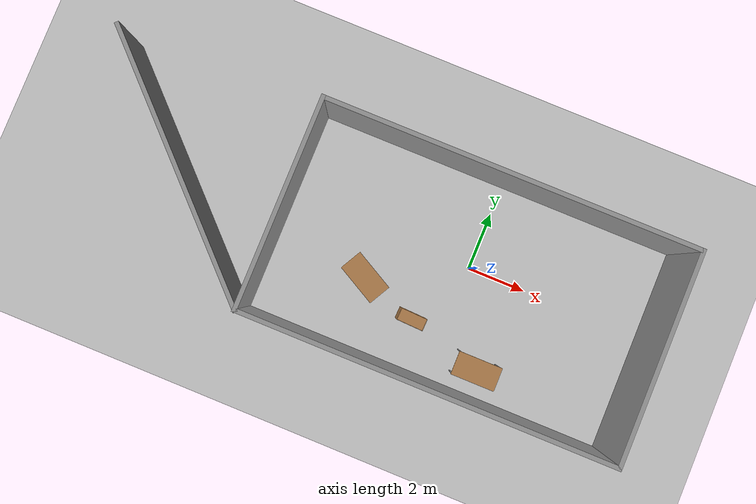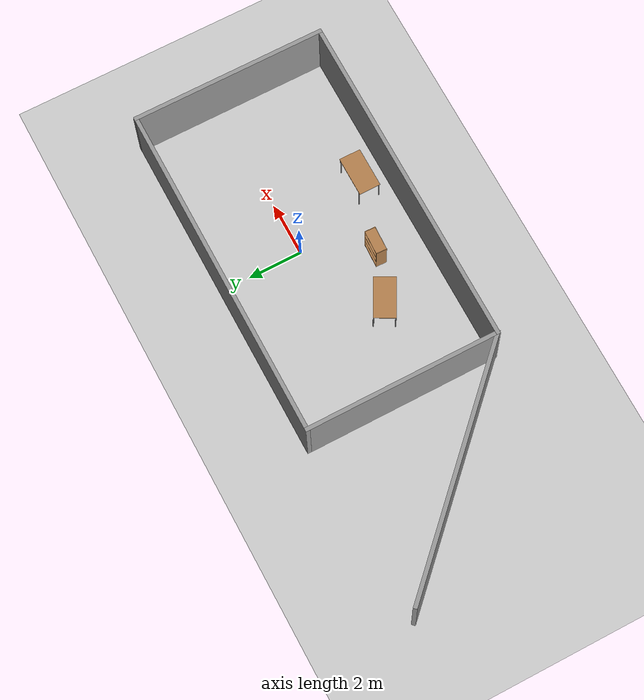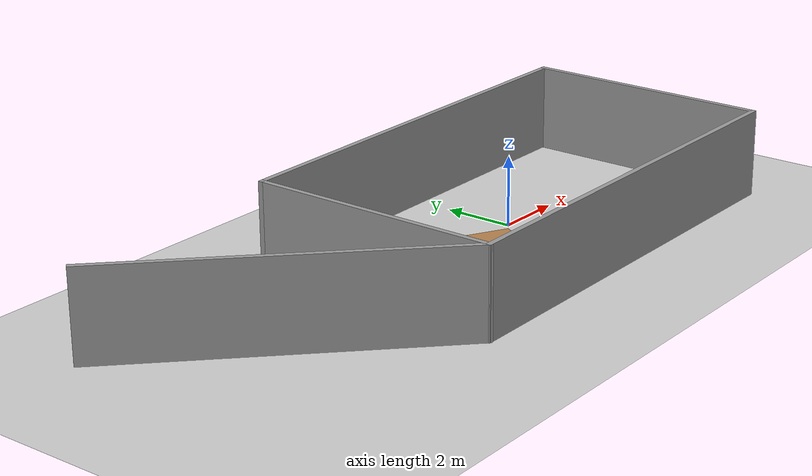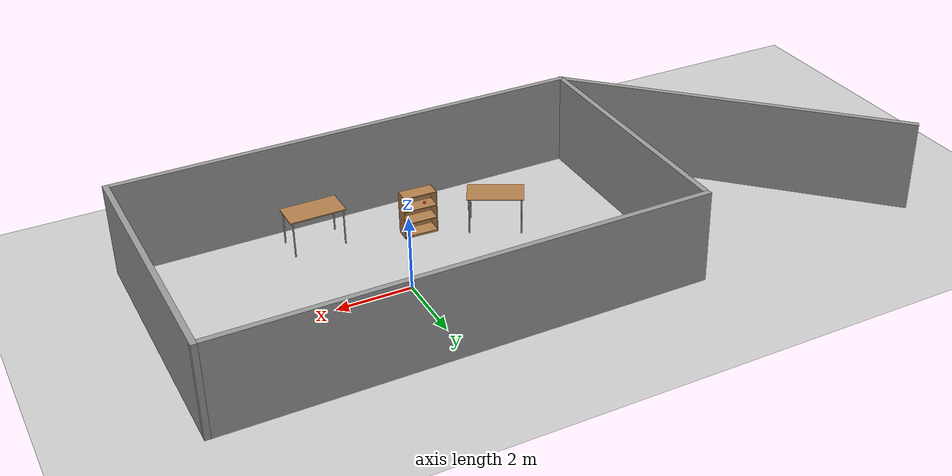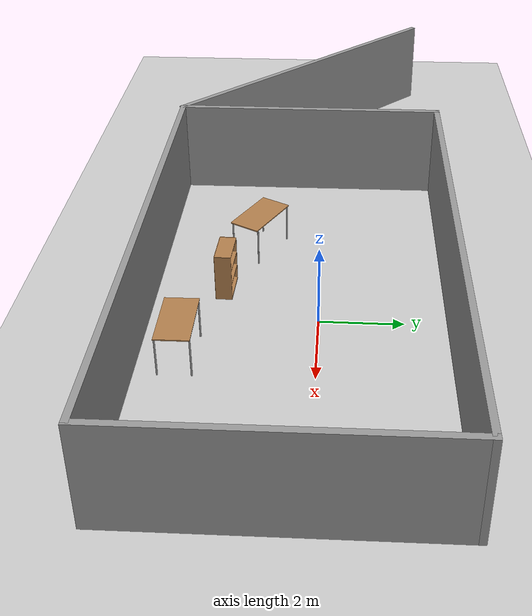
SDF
<sdf version="1.6">
 <world name="default">
  <model name="ground_plane">
   <static>1</static>
   <link name="link">
    <collision name="collision">
     <geometry><plane><normal>0 0 1</normal><size>100 100</size></plane></geometry>
     <surface><friction><ode><mu>100</mu><mu2>50</mu2></ode></friction></surface>
    </collision>
    <visual name="visual">
     <cast_shadows>0</cast_shadows>
     <geometry><plane><normal>0 0 1</normal><size>100 100</size></plane></geometry>
     <material>
      <script><uri>file://media/materials/scripts/gazebo.material</uri><name>Gazebo/Grey</name></script>
     </material>
    </visual>
   </link>
  </model>
  <model name="wall">
   <pose>-3.57597 -0.50067 0 0 -0 0</pose>
   <link name="Wall_5">
    <collision name="Wall_5_Collision">
     <geometry><box><size>12.75 0.15 2.5</size></box></geometry>
     <pose>0 0 1.25 0 -0 0</pose>
    </collision>
    <visual name="Wall_5_Visual">
     <pose>0 0 1.25 0 -0 0</pose>
     <geometry><box><size>12.75 0.15 2.5</size></box></geometry>
     <material>
      <script><uri>file://media/materials/scripts/gazebo.material</uri><name>Gazebo/Grey</name></script>
      <ambient>1 1 1 1</ambient>
     </material>
     <meta><layer>0</layer></meta>
    </visual>
    <pose>3.40965 -3.53447 0 0 -0 0</pose>
   </link>
   <link name="Wall_6">
    <collision name="Wall_6_Collision">
     <geometry><box><size>7.25 0.15 2.5</size></box></geometry>
     <pose>0 0 1.25 0 -0 0</pose>
    </collision>
    <visual name="Wall_6_Visual">
     <pose>0 0 1.25 0 -0 0</pose>
     <geometry><box><size>7.25 0.15 2.5</size></box></geometry>
     <material>
      <script><uri>file://media/materials/scripts/gazebo.material</uri><name>Gazebo/Grey</name></script>
      <ambient>1 1 1 1</ambient>
     </material>
     <meta><layer>0</layer></meta>
    </visual>
    <pose>9.70965 0.015533 0 0 -0 1.5708</pose>
   </link>
   <link name="Wall_7">
    <collision name="Wall_7_Collision">
     <geometry><box><size>12.75 0.15 2.5</size></box></geometry>
     <pose>0 0 1.25 0 -0 0</pose>
    </collision>
    <visual name="Wall_7_Visual">
     <pose>0 0 1.25 0 -0 0</pose>
     <geometry><box><size>12.75 0.15 2.5</size></box></geometry>
     <material>
      <script><uri>file://media/materials/scripts/gazebo.material</uri><name>Gazebo/Grey</name></script>
      <ambient>1 1 1 1</ambient>
     </material>
     <meta><layer>0</layer></meta>
    </visual>
    <pose>3.40965 3.56553 0 0 -0 3.14159</pose>
   </link>
   <link name="Wall_8">
    <collision name="Wall_8_Collision">
     <geometry><box><size>7.25 0.15 2.5</size></box></geometry>
     <pose>0 0 1.25 0 -0 0</pose>
    </collision>
    <visual name="Wall_8_Visual">
     <pose>0 0 1.25 0 -0 0</pose>
     <geometry><box><size>7.25 0.15 2.5</size></box></geometry>
     <material>
      <script><uri>file://media/materials/scripts/gazebo.material</uri><name>Gazebo/Grey</name></script>
      <ambient>1 1 1 1</ambient>
     </material>
     <meta><layer>0</layer></meta>
    </visual>
    <pose>-2.89035 0.015533 0 0 0 -1.5708</pose>
   </link>
   <link name="Wall_9">
    <collision name="Wall_9_Collision">
     <geometry><box><size>9.75 0.15 2.5</size></box></geometry>
     <pose>0 0 1.25 0 -0 0</pose>
    </collision>
    <visual name="Wall_9_Visual">
     <pose>0 0 1.25 0 -0 0</pose>
     <geometry><box><size>9.75 0.15 2.5</size></box></geometry>
     <material>
      <script><uri>file://media/materials/scripts/gazebo.material</uri><name>Gazebo/Grey</name></script>
      <ambient>0 0 0 0</ambient>
     </material>
     <meta><layer>0</layer></meta>
    </visual>
    <pose>-6.28447 -0.140354 0 0 -0 2.35619</pose>
   </link>
   <static>1</static>
  </model>
  <model name="table">
   <static>1</static>
   <link name="link">
    <collision name="surface">
     <pose>0 0 1 0 -0 0</pose>
     <geometry><box><size>1.5 0.8 0.03</size></box></geometry>
     <surface><friction><ode><mu>0.6</mu><mu2>0.6</mu2></ode></friction></surface>
    </collision>
    <visual name="visual1">
     <pose>0 0 1 0 -0 0</pose>
     <geometry><box><size>1.5 0.8 0.03</size></box></geometry>
     <material>
      <script><uri>file://media/materials/scripts/gazebo.material</uri><name>Gazebo/Wood</name></script>
     </material>
    </visual>
    <collision name="front_left_leg">
     <pose>0.68 0.38 0.5 0 -0 0</pose>
     <geometry><cylinder><radius>0.02</radius><length>1</length></cylinder></geometry>
    </collision>
    <visual name="front_left_leg">
     <pose>0.68 0.38 0.5 0 -0 0</pose>
     <geometry><cylinder><radius>0.02</radius><length>1</length></cylinder></geometry>
     <material>
      <script><uri>file://media/materials/scripts/gazebo.material</uri><name>Gazebo/Grey</name></script>
     </material>
    </visual>
    <collision name="front_right_leg">
     <pose>0.68 -0.38 0.5 0 -0 0</pose>
     <geometry><cylinder><radius>0.02</radius><length>1</length></cylinder></geometry>
    </collision>
    <visual name="front_right_leg">
     <pose>0.68 -0.38 0.5 0 -0 0</pose>
     <geometry><cylinder><radius>0.02</radius><length>1</length></cylinder></geometry>
     <material>
      <script><uri>file://media/materials/scripts/gazebo.material</uri><name>Gazebo/Grey</name></script>
     </material>
    </visual>
    <collision name="back_right_leg">
     <pose>-0.68 -0.38 0.5 0 -0 0</pose>
     <geometry><cylinder><radius>0.02</radius><length>1</length></cylinder></geometry>
    </collision>
    <visual name="back_right_leg">
     <pose>-0.68 -0.38 0.5 0 -0 0</pose>
     <geometry><cylinder><radius>0.02</radius><length>1</length></cylinder></geometry>
     <material>
      <script><uri>file://media/materials/scripts/gazebo.material</uri><name>Gazebo/Grey</name></script>
     </material>
    </visual>
    <collision name="back_left_leg">
     <pose>-0.68 0.38 0.5 0 -0 0</pose>
     <geometry><cylinder><radius>0.02</radius><length>1</length></cylinder></geometry>
    </collision>
    <visual name="back_left_leg">
     <pose>-0.68 0.38 0.5 0 -0 0</pose>
     <geometry><cylinder><radius>0.02</radius><length>1</length></cylinder></geometry>
     <material>
      <script><uri>file://media/materials/scripts/gazebo.material</uri><name>Gazebo/Grey</name></script>
     </material>
    </visual>
   </link>
   <pose>1.34463 -3.05118 0 0 -0 0</pose>
  </model>
  <model name="table_0">
   <static>1</static>
   <link name="link">
    <collision name="surface">
     <pose>0 0 1 0 -0 0</pose>
     <geometry><box><size>1.5 0.8 0.03</size></box></geometry>
     <surface><friction><ode><mu>0.6</mu><mu2>0.6</mu2></ode></friction></surface>
    </collision>
    <visual name="visual1">
     <pose>0 0 1 0 -0 0</pose>
     <geometry><box><size>1.5 0.8 0.03</size></box></geometry>
     <material>
      <script><uri>file://media/materials/scripts/gazebo.material</uri><name>Gazebo/Wood</name></script>
     </material>
    </visual>
    <collision name="front_left_leg">
     <pose>0.68 0.38 0.5 0 -0 0</pose>
     <geometry><cylinder><radius>0.02</radius><length>1</length></cylinder></geometry>
    </collision>
    <visual name="front_left_leg">
     <pose>0.68 0.38 0.5 0 -0 0</pose>
     <geometry><cylinder><radius>0.02</radius><length>1</length></cylinder></geometry>
     <material>
      <script><uri>file://media/materials/scripts/gazebo.material</uri><name>Gazebo/Grey</name></script>
     </material>
    </visual>
    <collision name="front_right_leg">
     <pose>0.68 -0.38 0.5 0 -0 0</pose>
     <geometry><cylinder><radius>0.02</radius><length>1</length></cylinder></geometry>
    </collision>
    <visual name="front_right_leg">
     <pose>0.68 -0.38 0.5 0 -0 0</pose>
     <geometry><cylinder><radius>0.02</radius><length>1</length></cylinder></geometry>
     <material>
      <script><uri>file://media/materials/scripts/gazebo.material</uri><name>Gazebo/Grey</name></script>
     </material>
    </visual>
    <collision name="back_right_leg">
     <pose>-0.68 -0.38 0.5 0 -0 0</pose>
     <geometry><cylinder><radius>0.02</radius><length>1</length></cylinder></geometry>
    </collision>
    <visual name="back_right_leg">
     <pose>-0.68 -0.38 0.5 0 -0 0</pose>
     <geometry><cylinder><radius>0.02</radius><length>1</length></cylinder></geometry>
     <material>
      <script><uri>file://media/materials/scripts/gazebo.material</uri><name>Gazebo/Grey</name></script>
     </material>
    </visual>
    <collision name="back_left_leg">
     <pose>-0.68 0.38 0.5 0 -0 0</pose>
     <geometry><cylinder><radius>0.02</radius><length>1</length></cylinder></geometry>
    </collision>
    <visual name="back_left_leg">
     <pose>-0.68 0.38 0.5 0 -0 0</pose>
     <geometry><cylinder><radius>0.02</radius><length>1</length></cylinder></geometry>
     <material>
      <script><uri>file://media/materials/scripts/gazebo.material</uri><name>Gazebo/Grey</name></script>
     </material>
    </visual>
   </link>
   <pose>-3.14996 -1.6099 0 0 0 -0.497839</pose>
  </model>
  <model name="bookshelf">
   <static>1</static>
   <link name="link">
    <inertial><mass>1</mass></inertial>
    <collision name="back">
     <pose>0 0.005 0.6 0 -0 0</pose>
     <geometry><box><size>0.9 0.01 1.2</size></box></geometry>
    </collision>
    <visual name="visual1">
     <pose>0 0.005 0.6 0 -0 0</pose>
     <geometry><box><size>0.9 0.01 1.2</size></box></geometry>
     <material>
      <script><uri>file://media/materials/scripts/gazebo.material</uri><name>Gazebo/Wood</name></script>
     </material>
    </visual>
    <collision name="left_side">
     <pose>0.45 -0.195 0.6 0 -0 0</pose>
     <geometry><box><size>0.02 0.4 1.2</size></box></geometry>
    </collision>
    <visual name="visual2">
     <pose>0.45 -0.195 0.6 0 -0 0</pose>
     <geometry><box><size>0.02 0.4 1.2</size></box></geometry>
     <material>
      <script><uri>file://media/materials/scripts/gazebo.material</uri><name>Gazebo/Wood</name></script>
     </material>
    </visual>
    <collision name="right_side">
     <pose>-0.45 -0.195 0.6 0 -0 0</pose>
     <geometry><box><size>0.02 0.4 1.2</size></box></geometry>
    </collision>
    <visual name="visual3">
     <pose>-0.45 -0.195 0.6 0 -0 0</pose>
     <geometry><box><size>0.02 0.4 1.2</size></box></geometry>
     <material>
      <script><uri>file://media/materials/scripts/gazebo.material</uri><name>Gazebo/Wood</name></script>
     </material>
    </visual>
    <collision name="bottom">
     <pose>0 -0.195 0.03 0 -0 0</pose>
     <geometry><box><size>0.88 0.4 0.06</size></box></geometry>
    </collision>
    <visual name="visual4">
     <pose>0 -0.195 0.03 0 -0 0</pose>
     <geometry><box><size>0.88 0.4 0.06</size></box></geometry>
     <material>
      <script><uri>file://media/materials/scripts/gazebo.material</uri><name>Gazebo/Wood</name></script>
     </material>
    </visual>
    <collision name="top">
     <pose>0 -0.195 1.19 0 -0 0</pose>
     <geometry><box><size>0.88 0.4 0.02</size></box></geometry>
    </collision>
    <visual name="visual5">
     <pose>0 -0.195 1.19 0 -0 0</pose>
     <geometry><box><size>0.88 0.4 0.02</size></box></geometry>
     <material>
      <script><uri>file://media/materials/scripts/gazebo.material</uri><name>Gazebo/Wood</name></script>
     </material>
    </visual>
    <collision name="low_shelf">
     <pose>0 -0.195 0.43 0 -0 0</pose>
     <geometry><box><size>0.88 0.4 0.02</size></box></geometry>
    </collision>
    <visual name="visual6">
     <pose>0 -0.195 0.43 0 -0 0</pose>
     <geometry><box><size>0.88 0.4 0.02</size></box></geometry>
     <material>
      <script><uri>file://media/materials/scripts/gazebo.material</uri><name>Gazebo/Wood</name></script>
     </material>
    </visual>
    <collision name="high_shelf">
     <pose>0 -0.195 0.8 0 -0 0</pose>
     <geometry><box><size>0.88 0.4 0.02</size></box></geometry>
    </collision>
    <visual name="visual7">
     <pose>0 -0.195 0.8 0 -0 0</pose>
     <geometry><box><size>0.88 0.4 0.02</size></box></geometry>
     <material>
      <script><uri>file://media/materials/scripts/gazebo.material</uri><name>Gazebo/Wood</name></script>
     </material>
    </visual>
   </link>
   <pose>-1.24603 -2.482 0 0 -0 3.10132</pose>
  </model>
  <model name="cricket_ball">
   <link name="link">
    <pose>0 0 0.0375 0 -0 0</pose>
    <inertial>
     <mass>0.1467</mass>
     <inertia>
      <ixx>8.25187e-05</ixx>
      <ixy>0</ixy>
      <ixz>0</ixz>
      <iyy>8.25187e-05</iyy>
      <iyz>0</iyz>
      <izz>8.25187e-05</izz>
     </inertia>
    </inertial>
    <collision name="collision">
     <geometry><sphere><radius>0.0375</radius></sphere></geometry>
     <surface>
      <contact>
       <poissons_ratio>0.347</poissons_ratio>
       <elastic_modulus>8.8e+09</elastic_modulus>
       <ode><kp>100000</kp><kd>100</kd><max_vel>100</max_vel><min_depth>0.001</min_depth></ode>
      </contact>
      <friction>
       <torsional>
        <coefficient>1</coefficient>
        <use_patch_radius>0</use_patch_radius>
        <surface_radius>0.01</surface_radius>
       </torsional>
      </friction>
     </surface>
    </collision>
    <visual name="visual">
     <geometry><sphere><radius>0.0375</radius></sphere></geometry>
     <material>
      <script><uri>file://media/materials/scripts/gazebo.material</uri><name>Gazebo/Red</name></script>
     </material>
    </visual>
    <velocity_decay><linear>0</linear><angular>0.005</angular></velocity_decay>
   </link>
   <pose>-1.41327 -2.25475 0.808986 -0.000101 -0.001086 0</pose>
  </model>
 </world>
</sdf>
